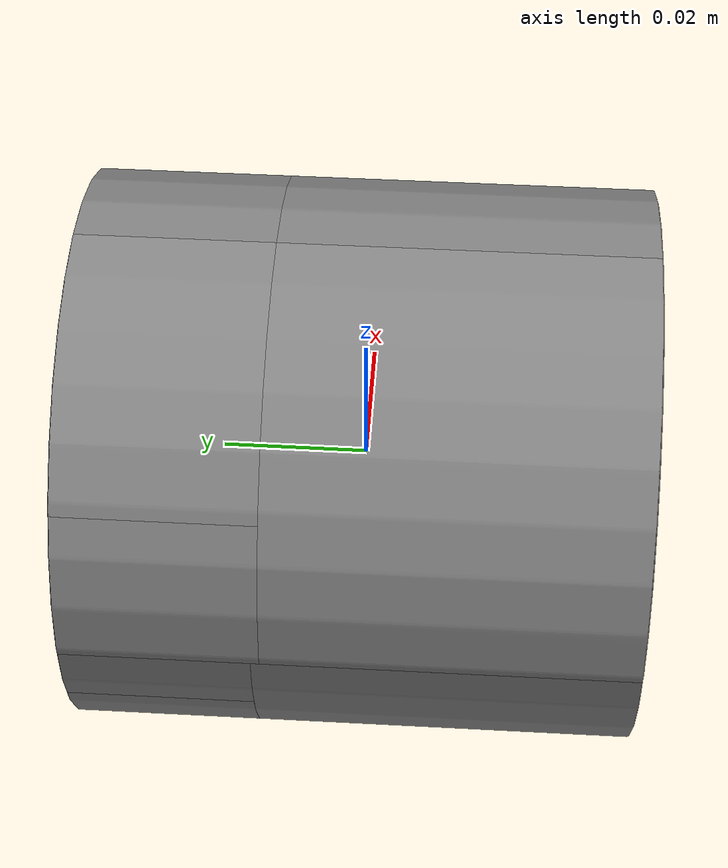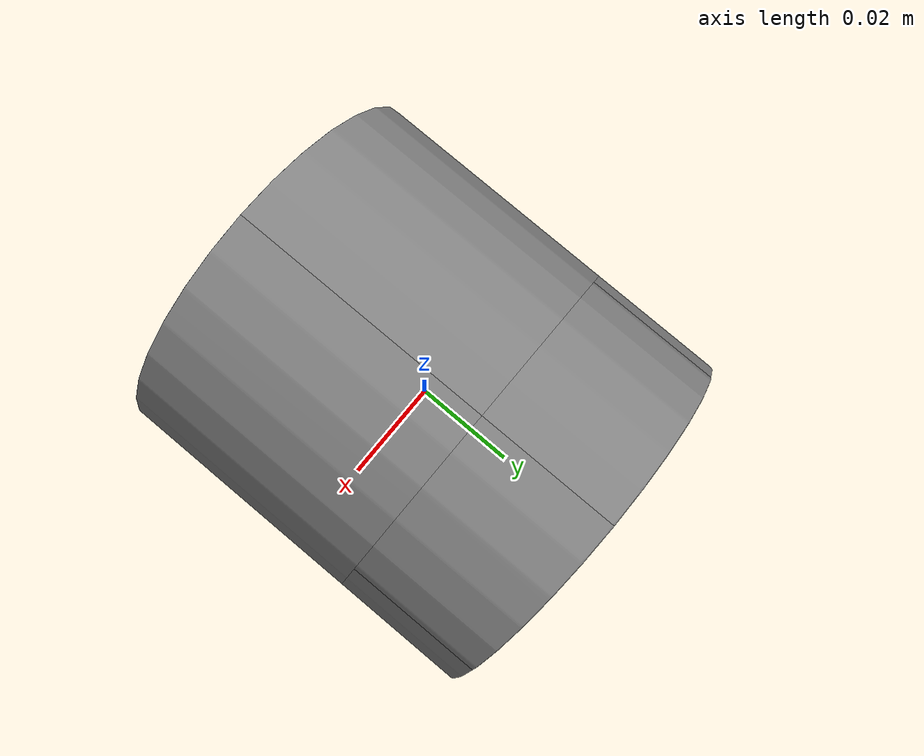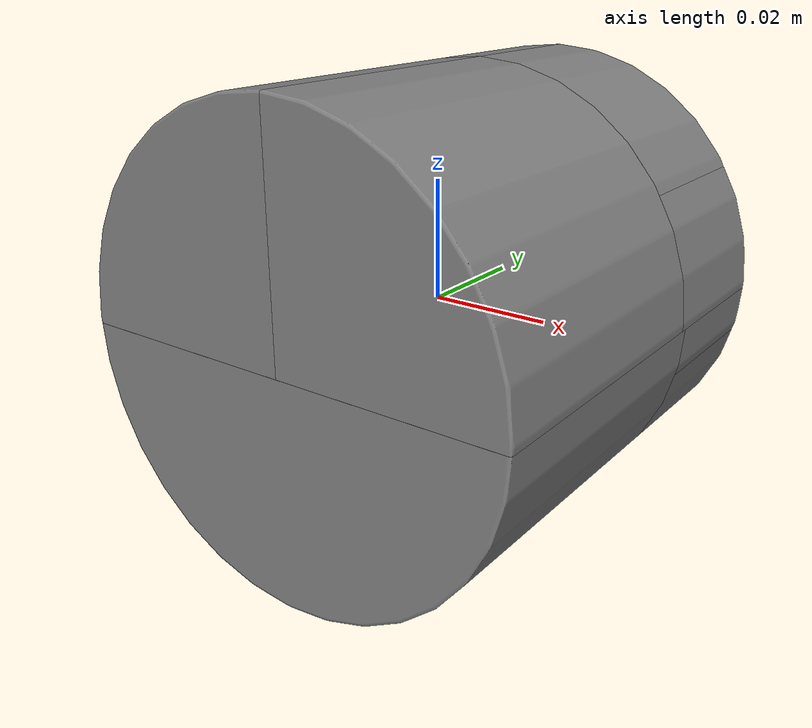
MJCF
<mujoco model="peg-hole">
	<default>
		<default class="visual">
			<geom type="mesh" contype="0" conaffinity="0"/>
		</default>
		<default class="collision">
			<geom type="mesh" rgba="0.5 0.5 0.5 1.0" density="100"/>
		</default>
	</default>
	<asset>
		<mesh name="Key_hole_visual" file="meshes/Key_cylinder_bottle.obj" scale="1.00 1.00 1.00"/>
		<mesh name="Key_hole_0" file="meshes/collision_meshes/Key_cylinder_bottle_decomp_0.obj" scale="1.00 1.00 1.00"/>
		<mesh name="Key_hole_1" file="meshes/collision_meshes/Key_cylinder_bottle_decomp_1.obj" scale="1.00 1.00 1.00"/>
		<mesh name="Key_hole_2" file="meshes/collision_meshes/Key_cylinder_bottle_decomp_2.obj" scale="1.00 1.00 1.00"/>
		<mesh name="Key_hole_3" file="meshes/collision_meshes/Key_cylinder_bottle_decomp_3.obj" scale="1.00 1.00 1.00"/>
		<mesh name="Key_hole_4" file="meshes/collision_meshes/Key_cylinder_bottle_decomp_4.obj" scale="1.00 1.00 1.00"/>
		<mesh name="Key_hole_5" file="meshes/collision_meshes/Key_cylinder_bottle_decomp_5.obj" scale="1.00 1.00 1.00"/>
		<mesh name="Key_hole_6" file="meshes/collision_meshes/Key_cylinder_bottle_decomp_6.obj" scale="1.00 1.00 1.00"/>
		<mesh name="Key_hole_7" file="meshes/collision_meshes/Key_cylinder_bottle_decomp_7.obj" scale="1.00 1.00 1.00"/>
		<mesh name="Key_hole_8" file="meshes/collision_meshes/Key_cylinder_bottle_decomp_8.obj" scale="1.00 1.00 1.00"/>
		<mesh name="Key_hole_9" file="meshes/collision_meshes/Key_cylinder_bottle_decomp_9.obj" scale="1.00 1.00 1.00"/>
		<mesh name="Key_hole_10" file="meshes/collision_meshes/Key_cylinder_bottle_decomp_10.obj" scale="1.00 1.00 1.00"/>
		<mesh name="Key_hole_11" file="meshes/collision_meshes/Key_cylinder_bottle_decomp_11.obj" scale="1.00 1.00 1.00"/>
		<mesh name="Key_hole_12" file="meshes/collision_meshes/Key_cylinder_bottle_decomp_12.obj" scale="1.00 1.00 1.00"/>
		<mesh name="Key_hole_13" file="meshes/collision_meshes/Key_cylinder_bottle_decomp_13.obj" scale="1.00 1.00 1.00"/>
	</asset>
	<worldbody>
		<body name="Key_hole">
			<body name="object">
				<geom name="Key_hole_0" class="collision" friction="0.01 0.3 0.0001" mesh="Key_hole_0" group="0"/>
				<geom name="Key_hole_1" class="collision" friction="0.01 0.3 0.0001" mesh="Key_hole_1" group="0"/>
				<geom name="Key_hole_2" class="collision" friction="0.01 0.3 0.0001" mesh="Key_hole_2" group="0"/>
				<geom name="Key_hole_3" class="collision" friction="0.01 0.3 0.0001" mesh="Key_hole_3" group="0"/>
				<geom name="Key_hole_4" class="collision" friction="0.01 0.3 0.0001" mesh="Key_hole_4" group="0"/>
				<geom name="Key_hole_5" class="collision" friction="0.01 0.3 0.0001" mesh="Key_hole_5" group="0"/>
				<geom name="Key_hole_6" class="collision" friction="0.01 0.3 0.0001" mesh="Key_hole_6" group="0"/>
				<geom name="Key_hole_7" class="collision" friction="0.01 0.3 0.0001" mesh="Key_hole_7" group="0"/>
				<geom name="Key_hole_8" class="collision" friction="0.01 0.3 0.0001" mesh="Key_hole_8" group="0"/>
				<geom name="Key_hole_9" class="collision" friction="0.01 0.3 0.0001" mesh="Key_hole_9" group="0"/>
				<geom name="Key_hole_10" class="collision" friction="0.01 0.3 0.0001" mesh="Key_hole_10" group="0"/>
				<geom name="Key_hole_11" class="collision" friction="0.01 0.3 0.0001" mesh="Key_hole_11" group="0"/>
				<geom name="Key_hole_12" class="collision" friction="0.01 0.3 0.0001" mesh="Key_hole_12" group="0"/>
				<geom name="Key_hole_13" class="collision" friction="0.01 0.3 0.0001" mesh="Key_hole_13" group="0"/>
				<geom name="Key_hole_visual" class="visual" mesh="Key_hole_visual" group="1"/>
			</body>
			<site rgba="0 0 0 0" size="0.005" pos="0 0 0" name="bottom_site"/>
			<site rgba="0 0 0 0" size="0.005" pos="0 0 0" name="top_site"/>
			<site rgba="0 0 0 0" size="0.005" pos="0 0 0" name="horizontal_radius_site"/>
		</body>
	</worldbody>
</mujoco>
